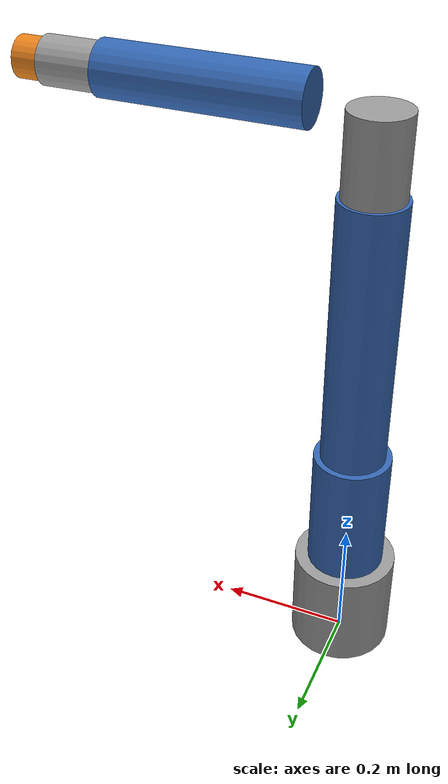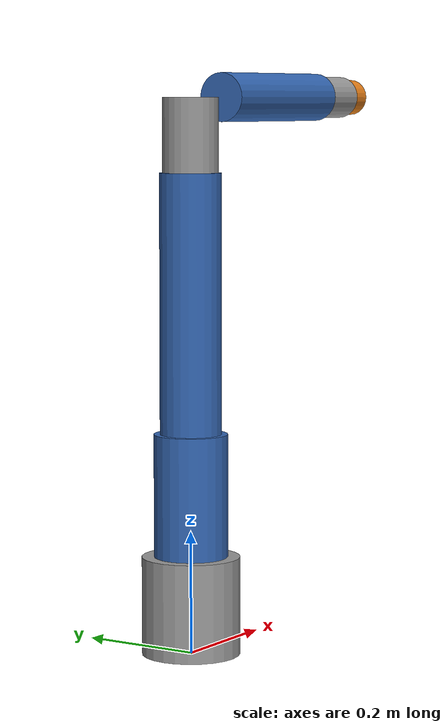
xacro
<?xml version="1.0"?>
<robot name="industrial_manipulator" xmlns:xacro="http://www.ros.org/wiki/xacro">

  <!-- Bringup başlatma dosyasından gelen fake/mock kip bayrağı -->
  <xacro:arg name="use_fake_hardware" default="false"/>

  <material name="grey"><color rgba="0.6 0.6 0.6 1"/></material>
  <material name="blue"><color rgba="0.2 0.4 0.7 1"/></material>
  <material name="orange"><color rgba="0.9 0.5 0.1 1"/></material>

  <!-- Silindir bağlantı makrosu: görsel + çarpışma + silindir eylemsizliği.
       xyz/rpy silindirin bağlantı çerçevesindeki merkezini ve yönünü verir
       (silindir kendi z ekseni boyunca uzanır). -->
  <xacro:macro name="cylinder_link" params="name length radius mass xyz rpy color">
    <link name="${name}">
      <visual>
        <origin xyz="${xyz}" rpy="${rpy}"/>
        <geometry><cylinder length="${length}" radius="${radius}"/></geometry>
        <material name="${color}"/>
      </visual>
      <collision>
        <origin xyz="${xyz}" rpy="${rpy}"/>
        <geometry><cylinder length="${length}" radius="${radius}"/></geometry>
      </collision>
      <inertial>
        <origin xyz="${xyz}" rpy="${rpy}"/>
        <mass value="${mass}"/>
        <!-- Dolu silindir: Ixx = Iyy = m(3r² + l²)/12, Izz = m r²/2 -->
        <inertia ixx="${mass*(3*radius*radius + length*length)/12}" ixy="0" ixz="0"
                 iyy="${mass*(3*radius*radius + length*length)/12}" iyz="0"
                 izz="${mass*radius*radius/2}"/>
      </inertial>
    </link>
  </xacro:macro>

  <!-- Robot dünyaya sabitlenir; Gazebo'da devrilmez -->
  <link name="world"/>
  <joint name="world_to_base" type="fixed">
    <parent link="world"/> <child link="base_link"/>
    <origin xyz="0 0 0" rpy="0 0 0"/>
  </joint>

  <xacro:cylinder_link name="base_link" length="0.160" radius="0.080" mass="4.0"
                       xyz="0 0 0.080" rpy="0 0 0" color="grey"/>
  <xacro:cylinder_link name="link_1" length="0.200" radius="0.060" mass="3.0"
                       xyz="0 0 0.100" rpy="0 0 0" color="blue"/>
  <xacro:cylinder_link name="link_2" length="0.420" radius="0.050" mass="2.5"
                       xyz="0 0 0.210" rpy="0 0 0" color="blue"/>
  <xacro:cylinder_link name="link_3" length="0.120" radius="0.045" mass="1.5"
                       xyz="0 0 0.060" rpy="0 0 0" color="grey"/>
  <!-- link_4..link_6 tabanın +X yönünde uzanır: silindir y ekseni etrafında 90° döndürülür -->
  <xacro:cylinder_link name="link_4" length="0.300" radius="0.040" mass="1.2"
                       xyz="0.150 0 0" rpy="0 ${pi/2} 0" color="blue"/>
  <xacro:cylinder_link name="link_5" length="0.085" radius="0.035" mass="0.8"
                       xyz="0.0425 0 0" rpy="0 ${pi/2} 0" color="grey"/>
  <xacro:cylinder_link name="link_6" length="0.040" radius="0.030" mass="0.3"
                       xyz="0.020 0 0" rpy="0 ${pi/2} 0" color="orange"/>

  <!-- Eklemler: Bölüm 4, Liste 24 ile aynı. Sönüm (damping), Gazebo'da
       eklemlerin titreşmeden durmasına yardım eder. -->
  <joint name="joint_1" type="revolute">
    <parent link="base_link"/> <child link="link_1"/>
    <origin xyz="0 0 0.160" rpy="0 0 0"/> <axis xyz="0 0 1"/>
    <limit lower="${-pi}" upper="${pi}" effort="150" velocity="2.5"/>
    <dynamics damping="1.0"/>
  </joint>
  <joint name="joint_2" type="revolute">
    <parent link="link_1"/> <child link="link_2"/>
    <origin xyz="0 0 0.200" rpy="0 0 0"/> <axis xyz="0 1 0"/>
    <limit lower="${-pi/2}" upper="${pi/2}" effort="150" velocity="2.5"/>
    <dynamics damping="1.0"/>
  </joint>
  <joint name="joint_3" type="revolute">
    <parent link="link_2"/> <child link="link_3"/>
    <origin xyz="0 0 0.420" rpy="0 0 0"/> <axis xyz="0 1 0"/>
    <limit lower="${-pi}" upper="${pi}" effort="100" velocity="3.0"/>
    <dynamics damping="1.0"/>
  </joint>
  <joint name="joint_4" type="revolute">
    <parent link="link_3"/> <child link="link_4"/>
    <origin xyz="0.090 0 0.120" rpy="0 0 0"/> <axis xyz="1 0 0"/>
    <limit lower="${-pi}" upper="${pi}" effort="50" velocity="3.5"/>
    <dynamics damping="0.5"/>
  </joint>
  <joint name="joint_5" type="revolute">
    <parent link="link_4"/> <child link="link_5"/>
    <origin xyz="0.300 0 0" rpy="0 0 0"/> <axis xyz="0 1 0"/>
    <limit lower="${-pi}" upper="${pi}" effort="50" velocity="3.5"/>
    <dynamics damping="0.5"/>
  </joint>
  <joint name="joint_6" type="revolute">
    <parent link="link_5"/> <child link="link_6"/>
    <origin xyz="0.085 0 0" rpy="0 0 0"/> <axis xyz="1 0 0"/>
    <limit lower="${-2*pi}" upper="${2*pi}" effort="30" velocity="4.0"/>
    <dynamics damping="0.5"/>
  </joint>

  <!-- Bilek flanşı (tool0): Bölüm 4 ile aynı -->
  <link name="tool0"/>
  <joint name="link_6_to_tool0" type="fixed">
    <parent link="link_6"/> <child link="tool0"/>
    <origin xyz="0.040 0 0" rpy="0 ${pi/2} 0"/>
  </joint>

  <!-- Eklem arayüzü makrosu: konum komutu, konum + hız durumu -->
  <xacro:macro name="position_joint" params="name lower upper">
    <joint name="${name}">
      <command_interface name="position">
        <param name="min">${lower}</param>
        <param name="max">${upper}</param>
      </command_interface>
      <state_interface name="position">
        <param name="initial_value">0.0</param>
      </state_interface>
      <state_interface name="velocity"/>
    </joint>
  </xacro:macro>

  <ros2_control name="ManipulatorSystem" type="system">
    <hardware>
      <xacro:if value="$(arg use_fake_hardware)">
        <!-- Kip 2: Saf Yazılım / Mock Sürücü (Donanım gerektirmez).
             Komut edilen konumu doğrudan durum olarak geri yansıtır. -->
        <plugin>mock_components/GenericSystem</plugin>
        <param name="calculate_dynamics">true</param>
      </xacro:if>
      <xacro:unless value="$(arg use_fake_hardware)">
        <!-- Kip 1: Gazebo Simülasyon Sürücüsü -->
        <plugin>gz_ros2_control/GazeboSimSystem</plugin>
      </xacro:unless>
    </hardware>
    <xacro:position_joint name="joint_1" lower="${-pi}"   upper="${pi}"/>
    <xacro:position_joint name="joint_2" lower="${-pi/2}" upper="${pi/2}"/>
    <xacro:position_joint name="joint_3" lower="${-pi}"   upper="${pi}"/>
    <xacro:position_joint name="joint_4" lower="${-pi}"   upper="${pi}"/>
    <xacro:position_joint name="joint_5" lower="${-pi}"   upper="${pi}"/>
    <xacro:position_joint name="joint_6" lower="${-2*pi}" upper="${2*pi}"/>
  </ros2_control>

  <!-- Gazebo kipinde denetleyici yöneticisini Gazebo'nun içinde çalıştıran
       eklenti. Mock kipinde ros2_control_node bu işi üstlenir. -->
  <xacro:unless value="$(arg use_fake_hardware)">
    <gazebo>
      <plugin filename="gz_ros2_control-system"
              name="gz_ros2_control::GazeboSimROS2ControlPlugin">
        <parameters>$(find ch05_simulation_visualization)/config/controllers.yaml</parameters>
      </plugin>
    </gazebo>
  </xacro:unless>

</robot>
